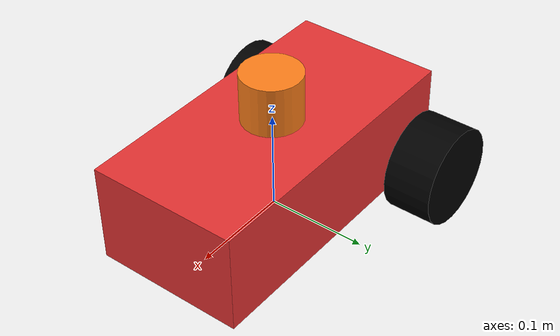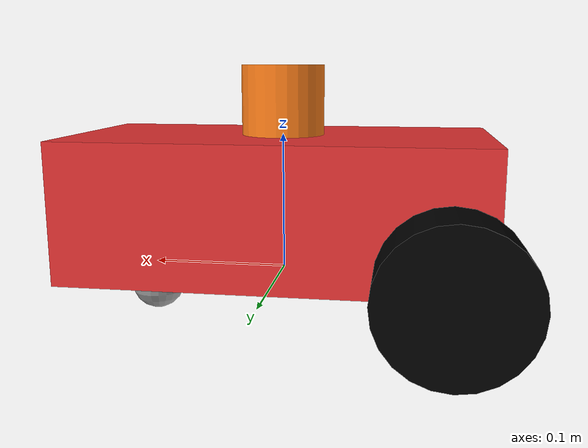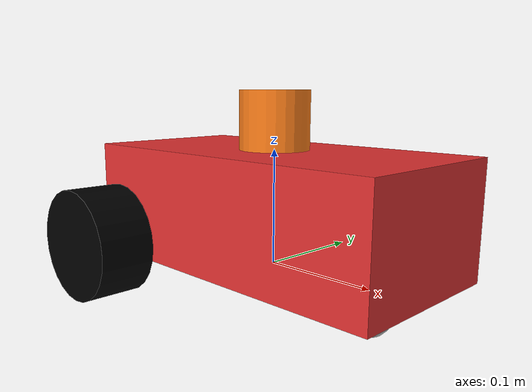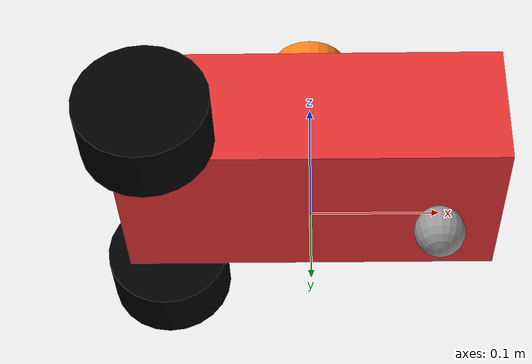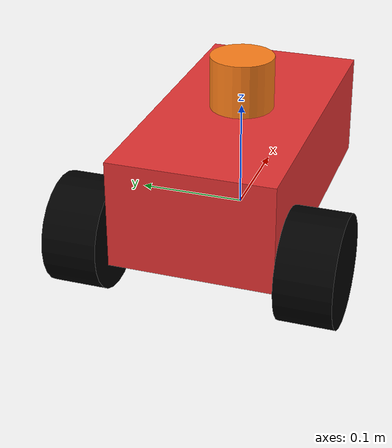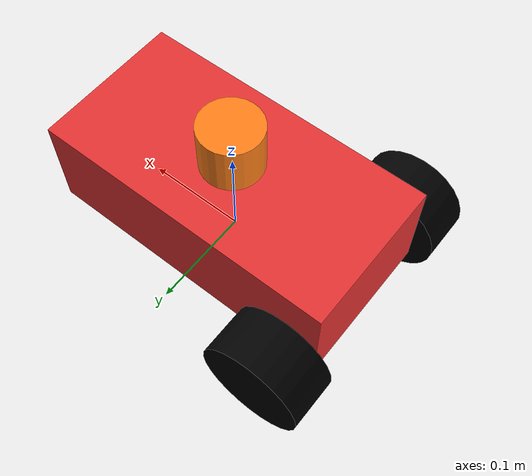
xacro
<?xml version="1.0"?>
<robot name="scoutbot">

  <link name="base_footprint"/>
  <joint name="base_footprint_to_base_link" type="fixed">
    <parent link="base_footprint"/>
    <child link="base_link"/>
    <origin xyz="0 0 0.05" rpy="0 0 0"/>
  </joint>

  <!-- Base box -->
  <link name="base_link">
    <visual>
      <origin xyz="0 0 0" rpy="0 0 0"/>
      <geometry>
        <box size="0.3 0.15 0.1"/>
      </geometry>
      <material name="red">
        <color rgba="0.9 0.2 0.2 1.0"/>
      </material>
    </visual>
    <collision>
      <origin xyz="0 0 0" rpy="0 0 0"/>
      <geometry>
        <box size="0.3 0.15 0.1"/>
      </geometry>
    </collision>
    <inertial>
      <origin xyz="0 0 0" rpy="0 0 0"/>
      <mass value="1.5"/>
      <inertia ixx="0.00344" iyy="0.01219" izz="0.01519" ixy="0.0" ixz="0.0" iyz="0.0"/>
    </inertial>
  </link>

  <!-- Lidar -->
  <link name="lidar_link">
    <visual>
      <geometry>
        <cylinder radius="0.03" length="0.05"/>
      </geometry>
      <material name="orange">
        <color rgba="1.0 0.5 0.1 1.0"/>
      </material>
    </visual>
    <collision>
      <geometry>
        <cylinder radius="0.03" length="0.05"/>
      </geometry>
    </collision>
    <inertial>
      <origin xyz="0 0 0" rpy="0 0 0"/>
      <mass value="0.05"/>
      <inertia ixx="0.000064" iyy="0.000064" izz="0.000045" ixy="0.0" ixz="0.0" iyz="0.0"/>
    </inertial>
  </link>
  <joint name="lidar_joint" type="fixed">
    <parent link="base_link"/>
    <child link="lidar_link"/>
    <origin xyz="0 0 0.075" rpy="0 0 0"/>
  </joint>

  <!-- Left wheel -->
  <link name="left_wheel">
    <visual>
      <geometry>
        <cylinder radius="0.05" length="0.05"/>
        <origin xyz="0 0 0" rpy="0 0 0"/>
      </geometry>
      <material name="black">
        <color rgba="0.0 0.0 0.0 1.0" />
      </material>
    </visual>
    <collision>
      <geometry>
        <cylinder radius="0.05" length="0.05"/>
        <origin xyz="0 0 0" rpy="0 0 0"/>
      </geometry>
    </collision>
    <inertial>
      <origin xyz="0 0 0" rpy="0 0 0"/>
      <mass value="0.15"/>
      <inertia ixx="0.00019" iyy="0.00013" izz="0.00019" ixy="0.0" ixz="0.0" iyz="0.0"/>
    </inertial>
  </link>
  <joint name="left_wheel_joint" type="continuous">
    <parent link="base_link"/>
    <child link="left_wheel"/>
    <origin xyz="-0.12 0.1035 -0.035" rpy="1.57 0 0"/>
    <axis xyz="0.0 0.0 1.0"/>
  </joint>

  <!-- Right wheel -->
  <link name="right_wheel">
    <visual>
      <geometry>
        <cylinder radius="0.05" length="0.05"/>
        <origin xyz="0 0 0" rpy="0 0 0"/>
      </geometry>
      <material name="black">
        <color rgba="0.0 0.0 0.0 1.0" />
      </material>
    </visual>
    <collision>
      <geometry>
        <cylinder radius="0.05" length="0.05"/>
        <origin xyz="0 0 0" rpy="0 0 0"/>
      </geometry>
    </collision>
    <inertial>
      <origin xyz="0 0 0" rpy="0 0 0"/>
      <mass value="0.15"/>
      <inertia ixx="0.00019" iyy="0.00013" izz="0.00019" ixy="0.0" ixz="0.0" iyz="0.0"/>
    </inertial>
  </link>
  <joint name="right_wheel_joint" type="continuous">
    <parent link="base_link"/>
    <child link="right_wheel"/>
    <origin xyz="-0.12 -0.1035 -0.035" rpy="1.57 0 0"/>
    <axis xyz="0.0 0.0 1.0"/>
  </joint>

  <!-- Front caster wheel -->
  <link name="caster_wheel">
    <visual>
      <geometry>
        <sphere radius="0.02"/>
      </geometry>
      <material name="grey">
        <color rgba="0.6 0.6 0.6 1.0"/>
      </material>
    </visual>
    <collision>
      <geometry>
        <sphere radius="0.02"/>
      </geometry>
    </collision>
    <inertial>
      <origin xyz="0 0 0" rpy="0 0 0"/>
      <mass value="0.05"/>
      <inertia ixx="0.000016" iyy="0.000016" izz="0.000016" ixy="0.0" ixz="0.0" iyz="0.0"/>
    </inertial>
  </link>
  <joint name="caster_joint" type="fixed">
    <parent link="base_link"/>
    <child link="caster_wheel"/>
    <origin rpy="0 0 0" xyz="0.1 0 -0.067"/>
    <!-- front/center, near ground -->
  </joint>
</robot>
